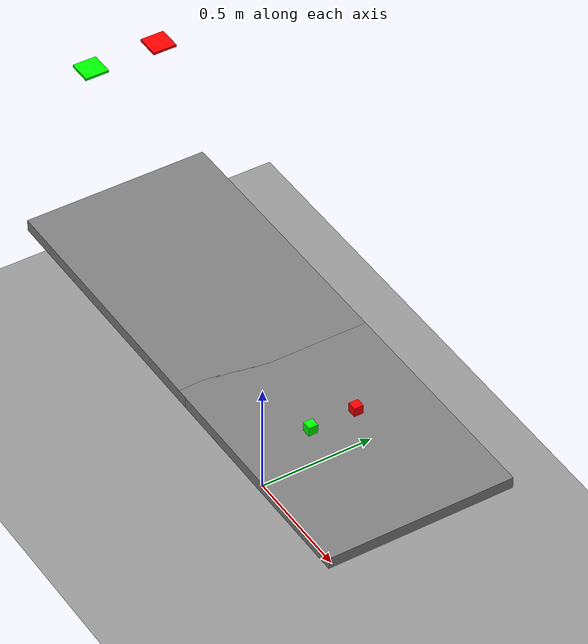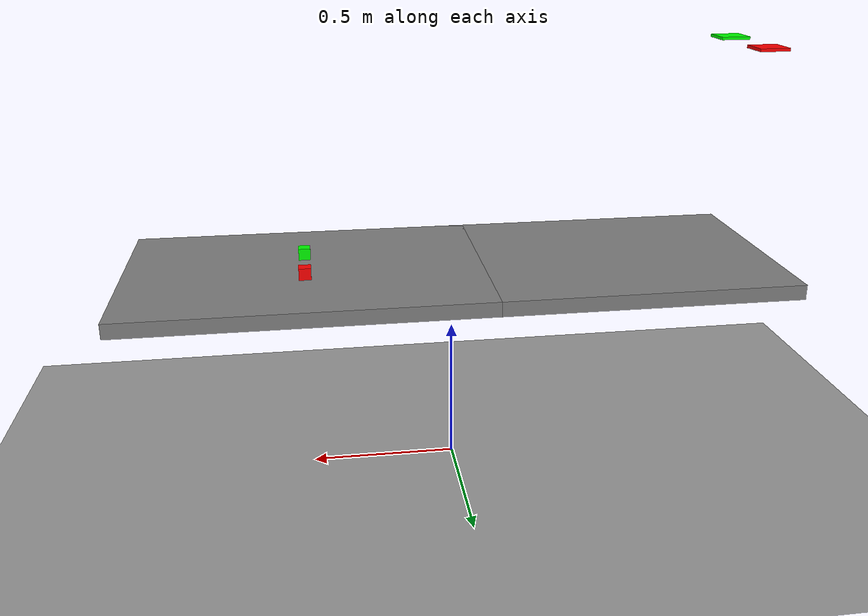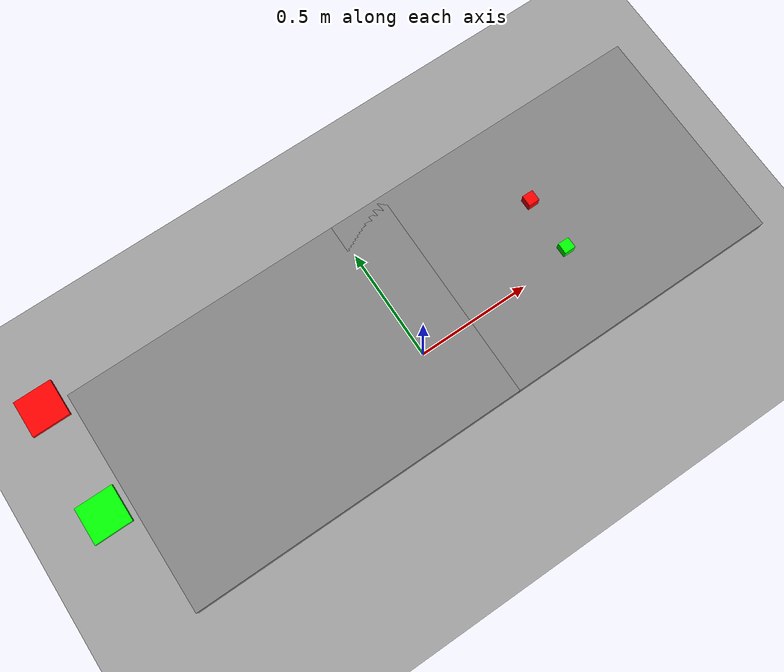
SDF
<?xml version="1.0"?>
<sdf version="1.8">
  <world name="dual_table">
    <!-- Fizik -->
    <gravity>0 0 -9.81</gravity>
    <scene>
      <ambient>0.6 0.6 0.6 1</ambient>
      <background>0.8 0.8 0.8 1</background>
    </scene>

    <!-- Zemin -->
    <model name="ground">
      <static>true</static>
      <pose>0 0 0 0 0 0</pose>
      <link name="link">
        <collision name="collision">
          <geometry>
            <plane>
              <normal>0 0 1</normal>
              <size>200 200</size>
            </plane>
          </geometry>
        </collision>
        <visual name="visual">
          <geometry>
            <plane>
              <normal>0 0 1</normal>
              <size>200 200</size>
            </plane>
          </geometry>
          <material>
            <ambient>0.6 0.6 0.6 1</ambient>
            <diffuse>0.6 0.6 0.6 1</diffuse>
          </material>
        </visual>
      </link>
    </model>

    <!-- Masa 1: blokların olduğu masa (tepe: 0.74m) -->
    <model name="table_1">
      <static>true</static>
      <!-- Kalınlık 0.05m → merkez z = 0.74 - 0.025 = 0.715 -->
      <pose>0.50 0.00 0.715 0 0 0</pose>
      <link name="top">
        <collision name="col">
          <geometry>
            <box><size>1.20 0.80 0.05</size></box>
          </geometry>
        </collision>
        <visual name="vis">
          <geometry>
            <box><size>1.20 0.80 0.05</size></box>
          </geometry>
          <material>
            <ambient>0.5 0.5 0.5 1</ambient>
            <diffuse>0.5 0.5 0.5 1</diffuse>
          </material>
        </visual>
      </link>
    </model>

    <!-- Masa 2: hedef alanların olduğu masa (tepe: 0.74m) -->
    <model name="table_2">
      <static>true</static>
      <pose>-0.50 0.00 0.715 0 0 0</pose>
      <link name="top">
        <collision name="col">
          <geometry>
            <box><size>1.20 0.80 0.05</size></box>
          </geometry>
        </collision>
        <visual name="vis">
          <geometry>
            <box><size>1.20 0.80 0.05</size></box>
          </geometry>
          <material>
            <ambient>0.5 0.5 0.5 1</ambient>
            <diffuse>0.5 0.5 0.5 1</diffuse>
          </material>
        </visual>
      </link>

      <!-- Hedef pedler (ince kutular) -->
      <!-- Yükseklik 0.01 → merkez z = 0.74 + 0.005 = 0.745 -->
      <link name="red_pad">
        <pose>-0.50 0.15 0.745 0 0 0</pose>
        <collision name="col">
          <geometry><box><size>0.10 0.10 0.01</size></box></geometry>
        </collision>
        <visual name="vis">
          <geometry><box><size>0.10 0.10 0.01</size></box></geometry>
          <material>
            <ambient>1 0 0 1</ambient>
            <diffuse>1 0 0 1</diffuse>
            <emissive>0.2 0 0 1</emissive>
          </material>
        </visual>
      </link>

      <link name="green_pad">
        <pose>-0.50 -0.15 0.745 0 0 0</pose>
        <collision name="col">
          <geometry><box><size>0.10 0.10 0.01</size></box></geometry>
        </collision>
        <visual name="vis">
          <geometry><box><size>0.10 0.10 0.01</size></box></geometry>
          <material>
            <ambient>0 1 0 1</ambient>
            <diffuse>0 1 0 1</diffuse>
            <emissive>0 0.2 0 1</emissive>
          </material>
        </visual>
      </link>
    </model>

    <!-- Bloklar (0.04m küp → merkez z = 0.74 + 0.02 = 0.76) -->
    <model name="red_block_1">
      <pose>0.50 0.10 0.76 0 0 0</pose>
      <link name="link">
        <inertial>
          <mass>0.05</mass>
          <inertia>
            <ixx>1e-5</ixx><ixy>0</ixy><ixz>0</ixz>
            <iyy>1e-5</iyy><iyz>0</iyz>
            <izz>1e-5</izz>
          </inertia>
        </inertial>
        <collision name="col">
          <geometry><box><size>0.04 0.04 0.04</size></box></geometry>
        </collision>
        <visual name="vis">
          <geometry><box><size>0.04 0.04 0.04</size></box></geometry>
          <material><ambient>1 0 0 1</ambient><diffuse>1 0 0 1</diffuse></material>
        </visual>
      </link>
    </model>

    <model name="green_block_1">
      <pose>0.50 -0.10 0.76 0 0 0</pose>
      <link name="link">
        <inertial>
          <mass>0.05</mass>
          <inertia>
            <ixx>1e-5</ixx><ixy>0</ixy><ixz>0</ixz>
            <iyy>1e-5</iyy><iyz>0</iyz>
            <izz>1e-5</izz>
          </inertia>
        </inertial>
        <collision name="col">
          <geometry><box><size>0.04 0.04 0.04</size></box></geometry>
        </collision>
        <visual name="vis">
          <geometry><box><size>0.04 0.04 0.04</size></box></geometry>
          <material><ambient>0 1 0 1</ambient><diffuse>0 1 0 1</diffuse></material>
        </visual>
      </link>
    </model>

    <!-- Üst kamera: renk + derinlik (köprü dosyanla eşleşen topic adları) -->
    <model name="overhead_camera">
      <static>true</static>
      <!-- Masa1 üzerinde, yukarıda; aşağı baksın (pitch ~ -90°) -->
      <pose>0.50 0.00 1.20 0 -1.5708 0</pose>
      <link name="body">
        <sensor name="rgb_camera" type="camera">
          <always_on>true</always_on>
          <update_rate>30</update_rate>
          <topic>/camera/color/image_raw</topic>
          <camera>
            <horizontal_fov>1.0472</horizontal_fov> <!-- 60 deg -->
            <image>
              <width>640</width>
              <height>480</height>
              <format>R8G8B8</format>
            </image>
            <clip>
              <near>0.05</near>
              <far>5.0</far>
            </clip>
          </camera>
        </sensor>

        <sensor name="depth_camera" type="depth_camera">
          <always_on>true</always_on>
          <update_rate>30</update_rate>
          <topic>/camera/aligned_depth_to_color/image_raw</topic>
          <depth_camera>
            <image>
              <width>640</width>
              <height>480</height>
            </image>
            <clip>
              <near>0.1</near>
              <far>5.0</far>
            </clip>
          </depth_camera>
        </sensor>
      </link>
    </model>

  </world>
</sdf>
